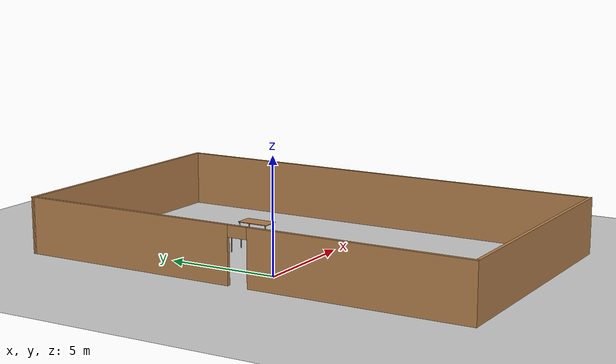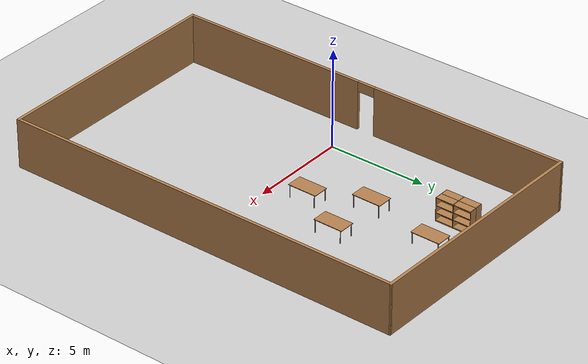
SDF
<sdf version="1.7">
 <world name="default">
  <model name="ground_plane">
   <static>1</static>
   <link name="link">
    <collision name="collision_collision">
     <geometry><plane><normal>0 0 1</normal><size>100 100</size></plane></geometry>
     <surface>
      <contact><collide_bitmask>65535</collide_bitmask></contact>
      <friction><ode><mu>100</mu><mu2>50</mu2></ode></friction>
     </surface>
    </collision>
    <visual name="visual">
     <cast_shadows>0</cast_shadows>
     <geometry><plane><normal>0 0 1</normal><size>100 100</size></plane></geometry>
     <material>
      <script><uri>file://media/materials/scripts/gazebo.material</uri><name>Gazebo/Grey</name></script>
     </material>
    </visual>
   </link>
  </model>
  <model name="world_v1">
   <pose>3.96468 0.530188 0 0 -0 0</pose>
   <link name="Wall_15">
    <pose>-5.925 -0.000782 0 0 -0 -1.5708</pose>
    <visual name="Wall_15_Visual_0">
     <pose>-5.35453 0 1.25 0 -0 0</pose>
     <geometry><box><size>10.0409 0.15 2.5</size></box></geometry>
     <material>
      <script><uri>file://media/materials/scripts/gazebo.material</uri><name>Gazebo/Wood</name></script>
      <ambient>1 1 1 1</ambient>
     </material>
     <meta><layer>0</layer></meta>
    </visual>
    <collision name="collision_Wall_15_Collision_0">
     <geometry><box><size>10.0409 0.15 2.5</size></box></geometry>
     <pose>-5.35453 0 1.25 0 -0 0</pose>
    </collision>
    <visual name="Wall_15_Visual_1">
     <pose>5.47047 0 1.25 0 -0 0</pose>
     <geometry><box><size>9.80906 0.15 2.5</size></box></geometry>
     <material>
      <script><uri>file://media/materials/scripts/gazebo.material</uri><name>Gazebo/Wood</name></script>
      <ambient>1 1 1 1</ambient>
     </material>
     <meta><layer>0</layer></meta>
    </visual>
    <collision name="collision_Wall_15_Collision_1">
     <geometry><box><size>9.80906 0.15 2.5</size></box></geometry>
     <pose>5.47047 0 1.25 0 -0 0</pose>
    </collision>
    <visual name="Wall_15_Visual_2">
     <pose>0.115942 0 2.25 0 -0 0</pose>
     <geometry><box><size>0.9 0.15 0.5</size></box></geometry>
     <material>
      <script><uri>file://media/materials/scripts/gazebo.material</uri><name>Gazebo/Wood</name></script>
      <ambient>1 1 1 1</ambient>
     </material>
     <meta><layer>0</layer></meta>
    </visual>
    <collision name="collision_Wall_15_Collision_2">
     <geometry><box><size>0.9 0.15 0.5</size></box></geometry>
     <pose>0.115942 0 2.25 0 -0 0</pose>
    </collision>
   </link>
   <link name="Wall_16">
    <collision name="collision_Wall_16_Collision">
     <geometry><box><size>12 0.15 2.5</size></box></geometry>
     <pose>0 0 1.25 0 -0 0</pose>
    </collision>
    <visual name="Wall_16_Visual">
     <pose>0 0 1.25 0 -0 0</pose>
     <geometry><box><size>12 0.15 2.5</size></box></geometry>
     <material>
      <script><uri>file://media/materials/scripts/gazebo.material</uri><name>Gazebo/Wood</name></script>
      <ambient>1 1 1 1</ambient>
     </material>
     <meta><layer>0</layer></meta>
    </visual>
    <pose>0 -10.3008 0 0 -0 0</pose>
   </link>
   <link name="Wall_17">
    <collision name="collision_Wall_17_Collision">
     <geometry><box><size>20.5 0.15 2.5</size></box></geometry>
     <pose>0 0 1.25 0 -0 0</pose>
    </collision>
    <visual name="Wall_17_Visual">
     <pose>0 0 1.25 0 -0 0</pose>
     <geometry><box><size>20.5 0.15 2.5</size></box></geometry>
     <material>
      <script><uri>file://media/materials/scripts/gazebo.material</uri><name>Gazebo/Wood</name></script>
      <ambient>1 1 1 1</ambient>
     </material>
     <meta><layer>0</layer></meta>
    </visual>
    <pose>5.925 -0.125782 0 0 -0 1.5708</pose>
   </link>
   <link name="Wall_18">
    <collision name="collision_Wall_18_Collision">
     <geometry><box><size>12.0026 0.15 2.5</size></box></geometry>
     <pose>0 0 1.25 0 -0 0</pose>
    </collision>
    <visual name="Wall_18_Visual">
     <pose>0 0 1.25 0 -0 0</pose>
     <geometry><box><size>12.0026 0.15 2.5</size></box></geometry>
     <material>
      <script><uri>file://media/materials/scripts/gazebo.material</uri><name>Gazebo/Wood</name></script>
      <ambient>1 1 1 1</ambient>
     </material>
     <meta><layer>0</layer></meta>
    </visual>
    <pose>0 10.1742 0 0 -0 3.1205</pose>
   </link>
   <static>1</static>
  </model>
  <model name="Table_clone">
   <static>1</static>
   <link name="link_3">
    <collision name="collision_surface">
     <pose>0 0 1 0 -0 0</pose>
     <geometry><box><size>1.5 0.8 0.03</size></box></geometry>
     <surface><friction><ode><mu>0.6</mu><mu2>0.6</mu2></ode></friction></surface>
    </collision>
    <visual name="visual1">
     <pose>0 0 1 0 -0 0</pose>
     <geometry><box><size>1.5 0.8 0.03</size></box></geometry>
     <material>
      <diffuse>1 1 1 1</diffuse>
      <script><uri>file://media/materials/scripts/gazebo.material</uri><name>Gazebo/Wood</name></script>
      <pbr>
       <metal>
        <albedo_map>https://fuel.ignitionrobotics.org/1.0/openrobotics/models/table/4/files/Table_Diffuse.jpg</albedo_map>
       </metal>
      </pbr>
     </material>
    </visual>
    <collision name="collision_front_left_leg">
     <pose>0.68 0.38 0.5 0 -0 0</pose>
     <geometry><cylinder><radius>0.02</radius><length>1</length></cylinder></geometry>
    </collision>
    <visual name="front_left_leg">
     <pose>0.68 0.38 0.5 0 -0 0</pose>
     <geometry><cylinder><radius>0.02</radius><length>1</length></cylinder></geometry>
     <material>
      <diffuse>0.5 0.5 0.5 1</diffuse>
      <script><uri>file://media/materials/scripts/gazebo.material</uri><name>Gazebo/Grey</name></script>
     </material>
    </visual>
    <collision name="collision_front_right_leg">
     <pose>0.68 -0.38 0.5 0 -0 0</pose>
     <geometry><cylinder><radius>0.02</radius><length>1</length></cylinder></geometry>
    </collision>
    <visual name="front_right_leg">
     <pose>0.68 -0.38 0.5 0 -0 0</pose>
     <geometry><cylinder><radius>0.02</radius><length>1</length></cylinder></geometry>
     <material>
      <diffuse>0.5 0.5 0.5 1</diffuse>
      <script><uri>file://media/materials/scripts/gazebo.material</uri><name>Gazebo/Grey</name></script>
     </material>
    </visual>
    <collision name="collision_back_right_leg">
     <pose>-0.68 -0.38 0.5 0 -0 0</pose>
     <geometry><cylinder><radius>0.02</radius><length>1</length></cylinder></geometry>
    </collision>
    <visual name="back_right_leg">
     <pose>-0.68 -0.38 0.5 0 -0 0</pose>
     <geometry><cylinder><radius>0.02</radius><length>1</length></cylinder></geometry>
     <material>
      <diffuse>0.5 0.5 0.5 1</diffuse>
      <script><uri>file://media/materials/scripts/gazebo.material</uri><name>Gazebo/Grey</name></script>
     </material>
    </visual>
    <collision name="collision_back_left_leg">
     <pose>-0.68 0.38 0.5 0 -0 0</pose>
     <geometry><cylinder><radius>0.02</radius><length>1</length></cylinder></geometry>
    </collision>
    <visual name="back_left_leg">
     <pose>-0.68 0.38 0.5 0 -0 0</pose>
     <geometry><cylinder><radius>0.02</radius><length>1</length></cylinder></geometry>
     <material>
      <diffuse>0.5 0.5 0.5 1</diffuse>
      <script><uri>file://media/materials/scripts/gazebo.material</uri><name>Gazebo/Grey</name></script>
     </material>
    </visual>
   </link>
   <pose>3.62156 8.04741 -0.448489 0 0 -1.57844</pose>
  </model>
  <model name="bookshelf_clone_0_clone_clone_0">
   <static>1</static>
   <link name="link">
    <inertial><mass>1</mass></inertial>
    <collision name="collision_back">
     <pose>0 0.005 0.6 0 -0 0</pose>
     <geometry><box><size>0.9 0.01 1.2</size></box></geometry>
    </collision>
    <visual name="visual1">
     <pose>0 0.005 0.6 0 -0 0</pose>
     <geometry><box><size>0.9 0.01 1.2</size></box></geometry>
     <material>
      <script><uri>file://media/materials/scripts/gazebo.material</uri><name>Gazebo/Wood</name></script>
     </material>
    </visual>
    <collision name="collision_left_side">
     <pose>0.45 -0.195 0.6 0 -0 0</pose>
     <geometry><box><size>0.02 0.4 1.2</size></box></geometry>
    </collision>
    <visual name="visual2">
     <pose>0.45 -0.195 0.6 0 -0 0</pose>
     <geometry><box><size>0.02 0.4 1.2</size></box></geometry>
     <material>
      <script><uri>file://media/materials/scripts/gazebo.material</uri><name>Gazebo/Wood</name></script>
     </material>
    </visual>
    <collision name="collision_right_side">
     <pose>-0.45 -0.195 0.6 0 -0 0</pose>
     <geometry><box><size>0.02 0.4 1.2</size></box></geometry>
    </collision>
    <visual name="visual3">
     <pose>-0.45 -0.195 0.6 0 -0 0</pose>
     <geometry><box><size>0.02 0.4 1.2</size></box></geometry>
     <material>
      <script><uri>file://media/materials/scripts/gazebo.material</uri><name>Gazebo/Wood</name></script>
     </material>
    </visual>
    <collision name="collision_bottom">
     <pose>0 -0.195 0.03 0 -0 0</pose>
     <geometry><box><size>0.88 0.4 0.06</size></box></geometry>
    </collision>
    <visual name="visual4">
     <pose>0 -0.195 0.03 0 -0 0</pose>
     <geometry><box><size>0.88 0.4 0.06</size></box></geometry>
     <material>
      <script><uri>file://media/materials/scripts/gazebo.material</uri><name>Gazebo/Wood</name></script>
     </material>
    </visual>
    <collision name="collision_top">
     <pose>0 -0.195 1.19 0 -0 0</pose>
     <geometry><box><size>0.88 0.4 0.02</size></box></geometry>
    </collision>
    <visual name="visual5">
     <pose>0 -0.195 1.19 0 -0 0</pose>
     <geometry><box><size>0.88 0.4 0.02</size></box></geometry>
     <material>
      <script><uri>file://media/materials/scripts/gazebo.material</uri><name>Gazebo/Wood</name></script>
     </material>
    </visual>
    <collision name="collision_low_shelf">
     <pose>0 -0.195 0.43 0 -0 0</pose>
     <geometry><box><size>0.88 0.4 0.02</size></box></geometry>
    </collision>
    <visual name="visual6">
     <pose>0 -0.195 0.43 0 -0 0</pose>
     <geometry><box><size>0.88 0.4 0.02</size></box></geometry>
     <material>
      <script><uri>file://media/materials/scripts/gazebo.material</uri><name>Gazebo/Wood</name></script>
     </material>
    </visual>
    <collision name="collision_high_shelf">
     <pose>0 -0.195 0.8 0 -0 0</pose>
     <geometry><box><size>0.88 0.4 0.02</size></box></geometry>
    </collision>
    <visual name="visual7">
     <pose>0 -0.195 0.8 0 -0 0</pose>
     <geometry><box><size>0.88 0.4 0.02</size></box></geometry>
     <material>
      <script><uri>file://media/materials/scripts/gazebo.material</uri><name>Gazebo/Wood</name></script>
     </material>
    </visual>
   </link>
   <pose>1.60752 8.50948 0 0 -0 1.56398</pose>
  </model>
  <model name="bookshelf_clone_0_clone_clone_1">
   <static>1</static>
   <link name="link">
    <inertial><mass>1</mass></inertial>
    <collision name="collision_back">
     <pose>0 0.005 0.6 0 -0 0</pose>
     <geometry><box><size>0.9 0.01 1.2</size></box></geometry>
    </collision>
    <visual name="visual1">
     <pose>0 0.005 0.6 0 -0 0</pose>
     <geometry><box><size>0.9 0.01 1.2</size></box></geometry>
     <material>
      <script><uri>file://media/materials/scripts/gazebo.material</uri><name>Gazebo/Wood</name></script>
     </material>
    </visual>
    <collision name="collision_left_side">
     <pose>0.45 -0.195 0.6 0 -0 0</pose>
     <geometry><box><size>0.02 0.4 1.2</size></box></geometry>
    </collision>
    <visual name="visual2">
     <pose>0.45 -0.195 0.6 0 -0 0</pose>
     <geometry><box><size>0.02 0.4 1.2</size></box></geometry>
     <material>
      <script><uri>file://media/materials/scripts/gazebo.material</uri><name>Gazebo/Wood</name></script>
     </material>
    </visual>
    <collision name="collision_right_side">
     <pose>-0.45 -0.195 0.6 0 -0 0</pose>
     <geometry><box><size>0.02 0.4 1.2</size></box></geometry>
    </collision>
    <visual name="visual3">
     <pose>-0.45 -0.195 0.6 0 -0 0</pose>
     <geometry><box><size>0.02 0.4 1.2</size></box></geometry>
     <material>
      <script><uri>file://media/materials/scripts/gazebo.material</uri><name>Gazebo/Wood</name></script>
     </material>
    </visual>
    <collision name="collision_bottom">
     <pose>0 -0.195 0.03 0 -0 0</pose>
     <geometry><box><size>0.88 0.4 0.06</size></box></geometry>
    </collision>
    <visual name="visual4">
     <pose>0 -0.195 0.03 0 -0 0</pose>
     <geometry><box><size>0.88 0.4 0.06</size></box></geometry>
     <material>
      <script><uri>file://media/materials/scripts/gazebo.material</uri><name>Gazebo/Wood</name></script>
     </material>
    </visual>
    <collision name="collision_top">
     <pose>0 -0.195 1.19 0 -0 0</pose>
     <geometry><box><size>0.88 0.4 0.02</size></box></geometry>
    </collision>
    <visual name="visual5">
     <pose>0 -0.195 1.19 0 -0 0</pose>
     <geometry><box><size>0.88 0.4 0.02</size></box></geometry>
     <material>
      <script><uri>file://media/materials/scripts/gazebo.material</uri><name>Gazebo/Wood</name></script>
     </material>
    </visual>
    <collision name="collision_low_shelf">
     <pose>0 -0.195 0.43 0 -0 0</pose>
     <geometry><box><size>0.88 0.4 0.02</size></box></geometry>
    </collision>
    <visual name="visual6">
     <pose>0 -0.195 0.43 0 -0 0</pose>
     <geometry><box><size>0.88 0.4 0.02</size></box></geometry>
     <material>
      <script><uri>file://media/materials/scripts/gazebo.material</uri><name>Gazebo/Wood</name></script>
     </material>
    </visual>
    <collision name="collision_high_shelf">
     <pose>0 -0.195 0.8 0 -0 0</pose>
     <geometry><box><size>0.88 0.4 0.02</size></box></geometry>
    </collision>
    <visual name="visual7">
     <pose>0 -0.195 0.8 0 -0 0</pose>
     <geometry><box><size>0.88 0.4 0.02</size></box></geometry>
     <material>
      <script><uri>file://media/materials/scripts/gazebo.material</uri><name>Gazebo/Wood</name></script>
     </material>
    </visual>
   </link>
   <pose>1.60152 7.58793 0 0 -0 1.56398</pose>
  </model>
  <model name="bookshelf_clone_0_clone_0">
   <static>1</static>
   <link name="link">
    <inertial><mass>1</mass></inertial>
    <collision name="collision_back">
     <pose>0 0.005 0.6 0 -0 0</pose>
     <geometry><box><size>0.9 0.01 1.2</size></box></geometry>
    </collision>
    <visual name="visual1">
     <pose>0 0.005 0.6 0 -0 0</pose>
     <geometry><box><size>0.9 0.01 1.2</size></box></geometry>
     <material>
      <script><uri>file://media/materials/scripts/gazebo.material</uri><name>Gazebo/Wood</name></script>
     </material>
    </visual>
    <collision name="collision_left_side">
     <pose>0.45 -0.195 0.6 0 -0 0</pose>
     <geometry><box><size>0.02 0.4 1.2</size></box></geometry>
    </collision>
    <visual name="visual2">
     <pose>0.45 -0.195 0.6 0 -0 0</pose>
     <geometry><box><size>0.02 0.4 1.2</size></box></geometry>
     <material>
      <script><uri>file://media/materials/scripts/gazebo.material</uri><name>Gazebo/Wood</name></script>
     </material>
    </visual>
    <collision name="collision_right_side">
     <pose>-0.45 -0.195 0.6 0 -0 0</pose>
     <geometry><box><size>0.02 0.4 1.2</size></box></geometry>
    </collision>
    <visual name="visual3">
     <pose>-0.45 -0.195 0.6 0 -0 0</pose>
     <geometry><box><size>0.02 0.4 1.2</size></box></geometry>
     <material>
      <script><uri>file://media/materials/scripts/gazebo.material</uri><name>Gazebo/Wood</name></script>
     </material>
    </visual>
    <collision name="collision_bottom">
     <pose>0 -0.195 0.03 0 -0 0</pose>
     <geometry><box><size>0.88 0.4 0.06</size></box></geometry>
    </collision>
    <visual name="visual4">
     <pose>0 -0.195 0.03 0 -0 0</pose>
     <geometry><box><size>0.88 0.4 0.06</size></box></geometry>
     <material>
      <script><uri>file://media/materials/scripts/gazebo.material</uri><name>Gazebo/Wood</name></script>
     </material>
    </visual>
    <collision name="collision_top">
     <pose>0 -0.195 1.19 0 -0 0</pose>
     <geometry><box><size>0.88 0.4 0.02</size></box></geometry>
    </collision>
    <visual name="visual5">
     <pose>0 -0.195 1.19 0 -0 0</pose>
     <geometry><box><size>0.88 0.4 0.02</size></box></geometry>
     <material>
      <script><uri>file://media/materials/scripts/gazebo.material</uri><name>Gazebo/Wood</name></script>
     </material>
    </visual>
    <collision name="collision_low_shelf">
     <pose>0 -0.195 0.43 0 -0 0</pose>
     <geometry><box><size>0.88 0.4 0.02</size></box></geometry>
    </collision>
    <visual name="visual6">
     <pose>0 -0.195 0.43 0 -0 0</pose>
     <geometry><box><size>0.88 0.4 0.02</size></box></geometry>
     <material>
      <script><uri>file://media/materials/scripts/gazebo.material</uri><name>Gazebo/Wood</name></script>
     </material>
    </visual>
    <collision name="collision_high_shelf">
     <pose>0 -0.195 0.8 0 -0 0</pose>
     <geometry><box><size>0.88 0.4 0.02</size></box></geometry>
    </collision>
    <visual name="visual7">
     <pose>0 -0.195 0.8 0 -0 0</pose>
     <geometry><box><size>0.88 0.4 0.02</size></box></geometry>
     <material>
      <script><uri>file://media/materials/scripts/gazebo.material</uri><name>Gazebo/Wood</name></script>
     </material>
    </visual>
   </link>
   <pose>1.59133 8.50669 0 0 0 -1.57362</pose>
  </model>
  <model name="bookshelf_clone_0_clone_1">
   <static>1</static>
   <link name="link">
    <inertial><mass>1</mass></inertial>
    <collision name="collision_back">
     <pose>0 0.005 0.6 0 -0 0</pose>
     <geometry><box><size>0.9 0.01 1.2</size></box></geometry>
    </collision>
    <visual name="visual1">
     <pose>0 0.005 0.6 0 -0 0</pose>
     <geometry><box><size>0.9 0.01 1.2</size></box></geometry>
     <material>
      <script><uri>file://media/materials/scripts/gazebo.material</uri><name>Gazebo/Wood</name></script>
     </material>
    </visual>
    <collision name="collision_left_side">
     <pose>0.45 -0.195 0.6 0 -0 0</pose>
     <geometry><box><size>0.02 0.4 1.2</size></box></geometry>
    </collision>
    <visual name="visual2">
     <pose>0.45 -0.195 0.6 0 -0 0</pose>
     <geometry><box><size>0.02 0.4 1.2</size></box></geometry>
     <material>
      <script><uri>file://media/materials/scripts/gazebo.material</uri><name>Gazebo/Wood</name></script>
     </material>
    </visual>
    <collision name="collision_right_side">
     <pose>-0.45 -0.195 0.6 0 -0 0</pose>
     <geometry><box><size>0.02 0.4 1.2</size></box></geometry>
    </collision>
    <visual name="visual3">
     <pose>-0.45 -0.195 0.6 0 -0 0</pose>
     <geometry><box><size>0.02 0.4 1.2</size></box></geometry>
     <material>
      <script><uri>file://media/materials/scripts/gazebo.material</uri><name>Gazebo/Wood</name></script>
     </material>
    </visual>
    <collision name="collision_bottom">
     <pose>0 -0.195 0.03 0 -0 0</pose>
     <geometry><box><size>0.88 0.4 0.06</size></box></geometry>
    </collision>
    <visual name="visual4">
     <pose>0 -0.195 0.03 0 -0 0</pose>
     <geometry><box><size>0.88 0.4 0.06</size></box></geometry>
     <material>
      <script><uri>file://media/materials/scripts/gazebo.material</uri><name>Gazebo/Wood</name></script>
     </material>
    </visual>
    <collision name="collision_top">
     <pose>0 -0.195 1.19 0 -0 0</pose>
     <geometry><box><size>0.88 0.4 0.02</size></box></geometry>
    </collision>
    <visual name="visual5">
     <pose>0 -0.195 1.19 0 -0 0</pose>
     <geometry><box><size>0.88 0.4 0.02</size></box></geometry>
     <material>
      <script><uri>file://media/materials/scripts/gazebo.material</uri><name>Gazebo/Wood</name></script>
     </material>
    </visual>
    <collision name="collision_low_shelf">
     <pose>0 -0.195 0.43 0 -0 0</pose>
     <geometry><box><size>0.88 0.4 0.02</size></box></geometry>
    </collision>
    <visual name="visual6">
     <pose>0 -0.195 0.43 0 -0 0</pose>
     <geometry><box><size>0.88 0.4 0.02</size></box></geometry>
     <material>
      <script><uri>file://media/materials/scripts/gazebo.material</uri><name>Gazebo/Wood</name></script>
     </material>
    </visual>
    <collision name="collision_high_shelf">
     <pose>0 -0.195 0.8 0 -0 0</pose>
     <geometry><box><size>0.88 0.4 0.02</size></box></geometry>
    </collision>
    <visual name="visual7">
     <pose>0 -0.195 0.8 0 -0 0</pose>
     <geometry><box><size>0.88 0.4 0.02</size></box></geometry>
     <material>
      <script><uri>file://media/materials/scripts/gazebo.material</uri><name>Gazebo/Wood</name></script>
     </material>
    </visual>
   </link>
   <pose>1.58741 7.59043 0 0 0 -1.57362</pose>
  </model>
  <model name="Table_clone_2">
   <static>1</static>
   <link name="link_6">
    <collision name="collision_surface">
     <pose>0 0 1 0 -0 0</pose>
     <geometry><box><size>1.5 0.8 0.03</size></box></geometry>
     <surface><friction><ode><mu>0.6</mu><mu2>0.6</mu2></ode></friction></surface>
    </collision>
    <visual name="visual1">
     <pose>0 0 1 0 -0 0</pose>
     <geometry><box><size>1.5 0.8 0.03</size></box></geometry>
     <material>
      <diffuse>1 1 1 1</diffuse>
      <script><uri>file://media/materials/scripts/gazebo.material</uri><name>Gazebo/Wood</name></script>
      <pbr>
       <metal>
        <albedo_map>https://fuel.ignitionrobotics.org/1.0/openrobotics/models/table/4/files/Table_Diffuse.jpg</albedo_map>
       </metal>
      </pbr>
     </material>
    </visual>
    <collision name="collision_front_left_leg">
     <pose>0.68 0.38 0.5 0 -0 0</pose>
     <geometry><cylinder><radius>0.02</radius><length>1</length></cylinder></geometry>
    </collision>
    <visual name="front_left_leg">
     <pose>0.68 0.38 0.5 0 -0 0</pose>
     <geometry><cylinder><radius>0.02</radius><length>1</length></cylinder></geometry>
     <material>
      <diffuse>0.5 0.5 0.5 1</diffuse>
      <script><uri>file://media/materials/scripts/gazebo.material</uri><name>Gazebo/Grey</name></script>
     </material>
    </visual>
    <collision name="collision_front_right_leg">
     <pose>0.68 -0.38 0.5 0 -0 0</pose>
     <geometry><cylinder><radius>0.02</radius><length>1</length></cylinder></geometry>
    </collision>
    <visual name="front_right_leg">
     <pose>0.68 -0.38 0.5 0 -0 0</pose>
     <geometry><cylinder><radius>0.02</radius><length>1</length></cylinder></geometry>
     <material>
      <diffuse>0.5 0.5 0.5 1</diffuse>
      <script><uri>file://media/materials/scripts/gazebo.material</uri><name>Gazebo/Grey</name></script>
     </material>
    </visual>
    <collision name="collision_back_right_leg">
     <pose>-0.68 -0.38 0.5 0 -0 0</pose>
     <geometry><cylinder><radius>0.02</radius><length>1</length></cylinder></geometry>
    </collision>
    <visual name="back_right_leg">
     <pose>-0.68 -0.38 0.5 0 -0 0</pose>
     <geometry><cylinder><radius>0.02</radius><length>1</length></cylinder></geometry>
     <material>
      <diffuse>0.5 0.5 0.5 1</diffuse>
      <script><uri>file://media/materials/scripts/gazebo.material</uri><name>Gazebo/Grey</name></script>
     </material>
    </visual>
    <collision name="collision_back_left_leg">
     <pose>-0.68 0.38 0.5 0 -0 0</pose>
     <geometry><cylinder><radius>0.02</radius><length>1</length></cylinder></geometry>
    </collision>
    <visual name="back_left_leg">
     <pose>-0.68 0.38 0.5 0 -0 0</pose>
     <geometry><cylinder><radius>0.02</radius><length>1</length></cylinder></geometry>
     <material>
      <diffuse>0.5 0.5 0.5 1</diffuse>
      <script><uri>file://media/materials/scripts/gazebo.material</uri><name>Gazebo/Grey</name></script>
     </material>
    </visual>
   </link>
   <pose>5.50825 4.29822 -0.374563 0 0 -1.57844</pose>
  </model>
  <model name="Table_clone_3">
   <static>1</static>
   <link name="link_7">
    <collision name="collision_surface_collision">
     <pose>0 0 1 0 -0 0</pose>
     <geometry><box><size>1.5 0.8 0.03</size></box></geometry>
     <surface><friction><ode><mu>0.6</mu><mu2>0.6</mu2></ode></friction></surface>
    </collision>
    <visual name="visual1">
     <pose>0 0 1 0 -0 0</pose>
     <geometry><box><size>1.5 0.8 0.03</size></box></geometry>
     <material>
      <diffuse>1 1 1 1</diffuse>
      <script><uri>file://media/materials/scripts/gazebo.material</uri><name>Gazebo/Wood</name></script>
      <pbr>
       <metal>
        <albedo_map>https://fuel.ignitionrobotics.org/1.0/openrobotics/models/table/4/files/Table_Diffuse.jpg</albedo_map>
       </metal>
      </pbr>
     </material>
    </visual>
    <collision name="collision_front_left_leg_collision">
     <pose>0.68 0.38 0.5 0 -0 0</pose>
     <geometry><cylinder><radius>0.02</radius><length>1</length></cylinder></geometry>
    </collision>
    <visual name="front_left_leg">
     <pose>0.68 0.38 0.5 0 -0 0</pose>
     <geometry><cylinder><radius>0.02</radius><length>1</length></cylinder></geometry>
     <material>
      <diffuse>0.5 0.5 0.5 1</diffuse>
      <script><uri>file://media/materials/scripts/gazebo.material</uri><name>Gazebo/Grey</name></script>
     </material>
    </visual>
    <collision name="collision_front_right_leg_collision">
     <pose>0.68 -0.38 0.5 0 -0 0</pose>
     <geometry><cylinder><radius>0.02</radius><length>1</length></cylinder></geometry>
    </collision>
    <visual name="front_right_leg">
     <pose>0.68 -0.38 0.5 0 -0 0</pose>
     <geometry><cylinder><radius>0.02</radius><length>1</length></cylinder></geometry>
     <material>
      <diffuse>0.5 0.5 0.5 1</diffuse>
      <script><uri>file://media/materials/scripts/gazebo.material</uri><name>Gazebo/Grey</name></script>
     </material>
    </visual>
    <collision name="collision_back_right_leg_collision">
     <pose>-0.68 -0.38 0.5 0 -0 0</pose>
     <geometry><cylinder><radius>0.02</radius><length>1</length></cylinder></geometry>
    </collision>
    <visual name="back_right_leg">
     <pose>-0.68 -0.38 0.5 0 -0 0</pose>
     <geometry><cylinder><radius>0.02</radius><length>1</length></cylinder></geometry>
     <material>
      <diffuse>0.5 0.5 0.5 1</diffuse>
      <script><uri>file://media/materials/scripts/gazebo.material</uri><name>Gazebo/Grey</name></script>
     </material>
    </visual>
    <collision name="collision_back_left_leg_collision">
     <pose>-0.68 0.38 0.5 0 -0 0</pose>
     <geometry><cylinder><radius>0.02</radius><length>1</length></cylinder></geometry>
    </collision>
    <visual name="back_left_leg">
     <pose>-0.68 0.38 0.5 0 -0 0</pose>
     <geometry><cylinder><radius>0.02</radius><length>1</length></cylinder></geometry>
     <material>
      <diffuse>0.5 0.5 0.5 1</diffuse>
      <script><uri>file://media/materials/scripts/gazebo.material</uri><name>Gazebo/Grey</name></script>
     </material>
    </visual>
   </link>
   <pose>4.03162 1.74128 -0.374563 0 0 -1.57844</pose>
  </model>
  <model name="Table_clone_8">
   <static>1</static>
   <link name="link_8">
    <collision name="collision_surface_8">
     <pose>0 0 1 0 -0 0</pose>
     <geometry><box><size>1.5 0.8 0.03</size></box></geometry>
     <surface><friction><ode><mu>0.6</mu><mu2>0.6</mu2></ode></friction></surface>
    </collision>
    <visual name="visual8">
     <pose>0 0 1 0 -0 0</pose>
     <geometry><box><size>1.5 0.8 0.03</size></box></geometry>
     <material>
      <diffuse>1 1 1 1</diffuse>
      <script><uri>file://media/materials/scripts/gazebo.material</uri><name>Gazebo/Wood</name></script>
      <pbr>
       <metal>
        <albedo_map>https://fuel.ignitionrobotics.org/1.0/openrobotics/models/table/4/files/Table_Diffuse.jpg</albedo_map>
       </metal>
      </pbr>
     </material>
    </visual>
    <collision name="collision_front_left_leg_8_collision">
     <pose>0.68 0.38 0.5 0 -0 0</pose>
     <geometry><cylinder><radius>0.02</radius><length>1</length></cylinder></geometry>
    </collision>
    <visual name="front_left_leg_8">
     <pose>0.68 0.38 0.5 0 -0 0</pose>
     <geometry><cylinder><radius>0.02</radius><length>1</length></cylinder></geometry>
     <material>
      <diffuse>0.5 0.5 0.5 1</diffuse>
      <script><uri>file://media/materials/scripts/gazebo.material</uri><name>Gazebo/Grey</name></script>
     </material>
    </visual>
    <collision name="collision_front_right_leg_8_collision">
     <pose>0.68 -0.38 0.5 0 -0 0</pose>
     <geometry><cylinder><radius>0.02</radius><length>1</length></cylinder></geometry>
    </collision>
    <visual name="front_right_leg_8">
     <pose>0.68 -0.38 0.5 0 -0 0</pose>
     <geometry><cylinder><radius>0.02</radius><length>1</length></cylinder></geometry>
     <material>
      <diffuse>0.5 0.5 0.5 1</diffuse>
      <script><uri>file://media/materials/scripts/gazebo.material</uri><name>Gazebo/Grey</name></script>
     </material>
    </visual>
    <collision name="collision_back_right_leg_8_collision">
     <pose>-0.68 -0.38 0.5 0 -0 0</pose>
     <geometry><cylinder><radius>0.02</radius><length>1</length></cylinder></geometry>
    </collision>
    <visual name="back_right_leg_8">
     <pose>-0.68 -0.38 0.5 0 -0 0</pose>
     <geometry><cylinder><radius>0.02</radius><length>1</length></cylinder></geometry>
     <material>
      <diffuse>0.5 0.5 0.5 1</diffuse>
      <script><uri>file://media/materials/scripts/gazebo.material</uri><name>Gazebo/Grey</name></script>
     </material>
    </visual>
    <collision name="collision_back_left_leg_8_collision">
     <pose>-0.68 0.38 0.5 0 -0 0</pose>
     <geometry><cylinder><radius>0.02</radius><length>1</length></cylinder></geometry>
    </collision>
    <visual name="back_left_leg_8">
     <pose>-0.68 0.38 0.5 0 -0 0</pose>
     <geometry><cylinder><radius>0.02</radius><length>1</length></cylinder></geometry>
     <material>
      <diffuse>0.5 0.5 0.5 1</diffuse>
      <script><uri>file://media/materials/scripts/gazebo.material</uri><name>Gazebo/Grey</name></script>
     </material>
    </visual>
   </link>
   <pose>2.93745 4.40065 -0.374563 0 0 -1.57844</pose>
  </model>
 </world>
</sdf>
